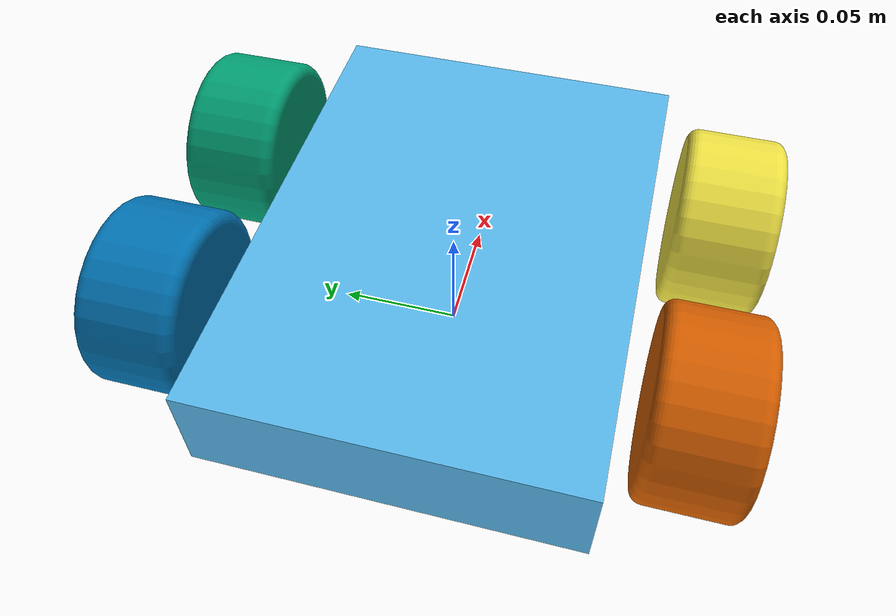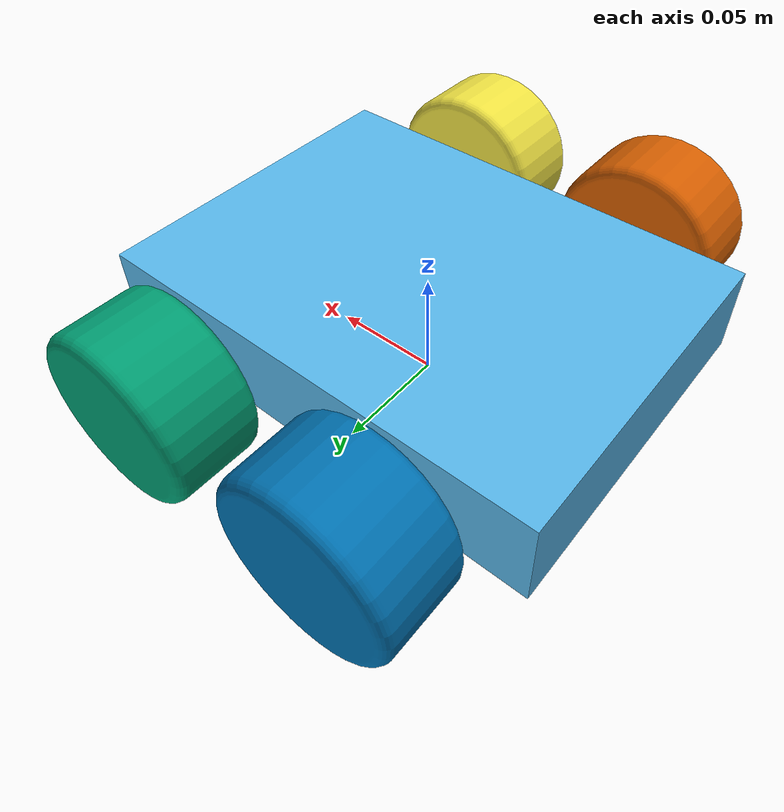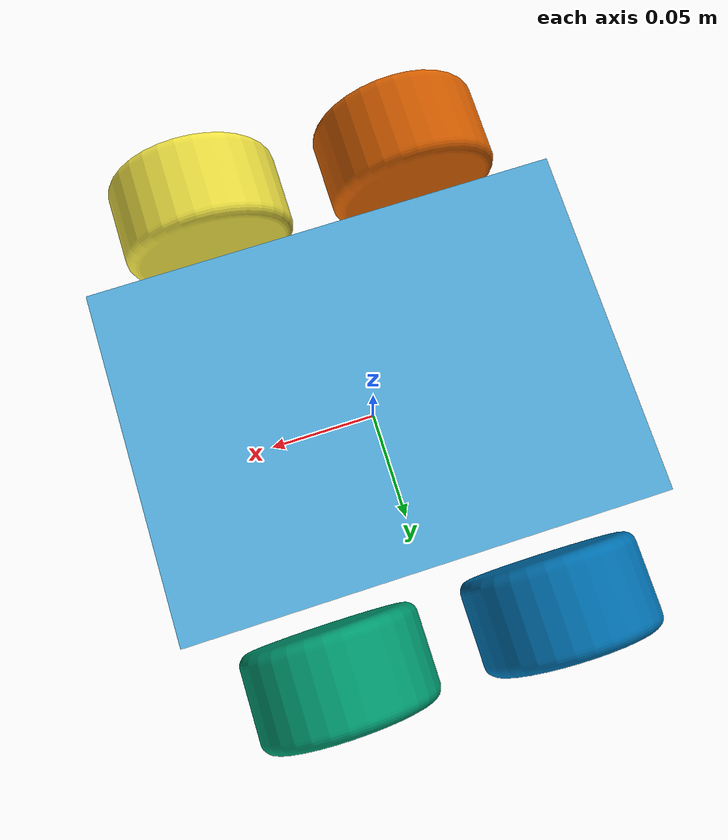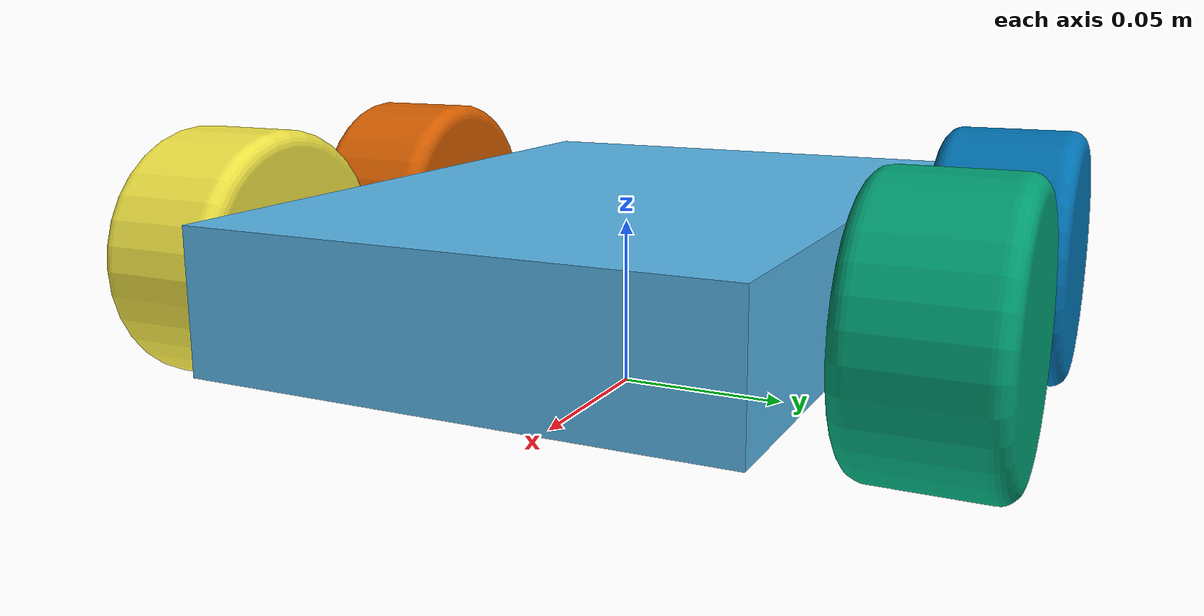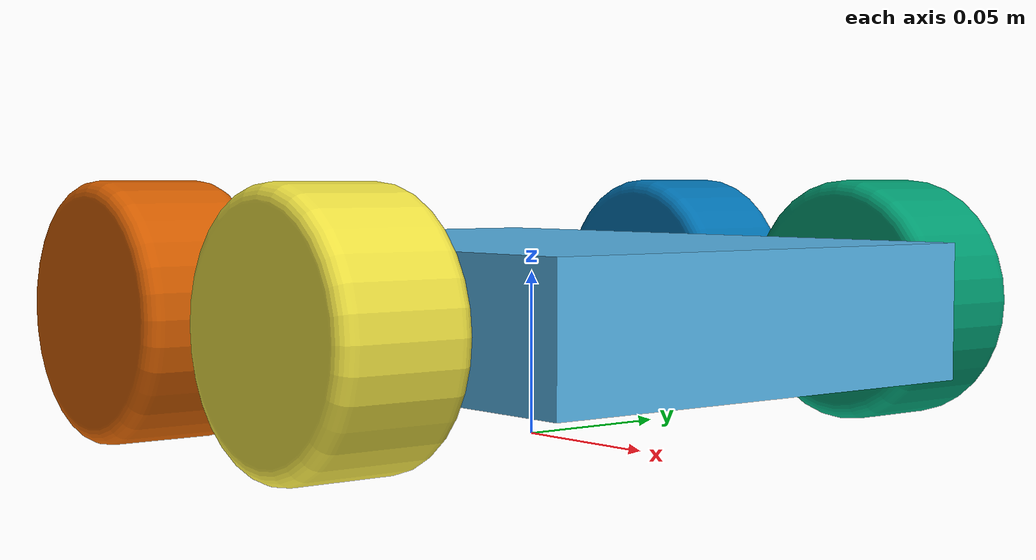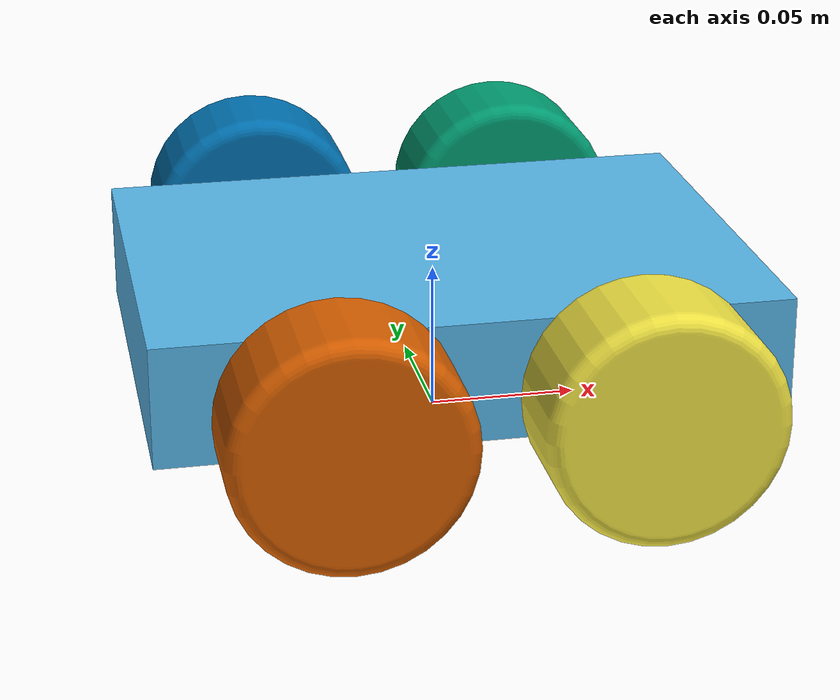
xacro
<?xml version="1.0" ?>

<robot name="cross_robot" xmlns:xacro="http://www.ros.org/wiki/xacro">

  <xacro:include filename="control/cross_ros2_control.xacro" />
  <xacro:include filename="wheels/wheels_macro.xacro" />

  <!-- Build your comprehensive robot -->
  <link name="base_footprint"/>
  <joint name="base_joint" type="fixed">
    <origin rpy="0 0 0" xyz="0 0 0.04"/>
    <parent link="base_footprint"/>
    <child link="base_link"/>
  </joint>

  <link name="base_link">
    <collision>
      <origin rpy="0 0 0" xyz="0 0 0"/>
      <geometry>
        <box size="0.205 0.15 0.04"/>
      </geometry>
      <color rgba="0.1 0.1 0.1 1.0"/>
    </collision>
    <visual>
      <origin rpy="0 0 0" xyz="0 0 0"/>
      <geometry>
        <box size="0.205 0.15 0.04"/>
      </geometry>
      <color rgba="0.1 0.1 0.1 1.0"/>
    </visual>
    <inertial>
      <origin rpy="0 0 0" xyz="0 0 0"/>
      <mass value="5"/>
      <inertia ixx="1.0" ixy="0.0" ixz="0.0" iyy="1.0" iyz="0.0" izz="1.0"/>
    </inertial>
  </link>

  <xacro:wheel prefix="front_left" x="0.0475" y="0.105"/>
  <xacro:wheel prefix="front_right" x="0.0475" y="-0.105"/>
  <xacro:wheel prefix="rear_left" x="-0.0475" y="0.105"/>
  <xacro:wheel prefix="rear_right" x="-0.0475" y="-0.105"/>

  <xacro:cross_velocity_control name="CrossVelocityControl" prefix="" />

</robot>

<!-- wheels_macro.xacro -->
<!--
Copied and modified from ROS1 example:
https://github.com/ros-simulation/gazebo_ros_demos/blob/kinetic-devel/rrbot_description/urdf/rrbot.gazebo
-->
<robot xmlns:xacro="http://ros.org/wiki/xacro">

  <xacro:macro name="wheel" params="prefix x y">
    <link name="${prefix}_wheel">
    <collision>
      <origin rpy="0 0 0" xyz="0 0 0"/>
      <geometry>
        <sphere radius="0.04"/>
      </geometry>
      <color rgba="0.2 0.2 0.2 1.0"/>
    </collision>
    <visual>
      <origin rpy="0 0 0" xyz="0 0 0"/>
      <geometry>
        <mesh filename="package://cross_description/meshes/wheel.stl" scale="0.0005 0.0005 0.0005"/>
      </geometry>
    </visual>
    <inertial>
      <origin rpy="0 0 0" xyz="0 0 0"/>
      <mass value="0.5"/>
      <inertia ixx="1.0" ixy="0.0" ixz="0.0" iyy="1.0" iyz="0.0" izz="1.0"/>
    </inertial>
    </link>

    <joint name="${prefix}_wheel_joint" type="continuous">
      <origin rpy="0 0 0" xyz="${x} ${y} 0"/>
      <parent link="base_link"/>
      <child link="${prefix}_wheel"/>
      <axis xyz="0 1 0"/>
    </joint>
  </xacro:macro>

</robot>
